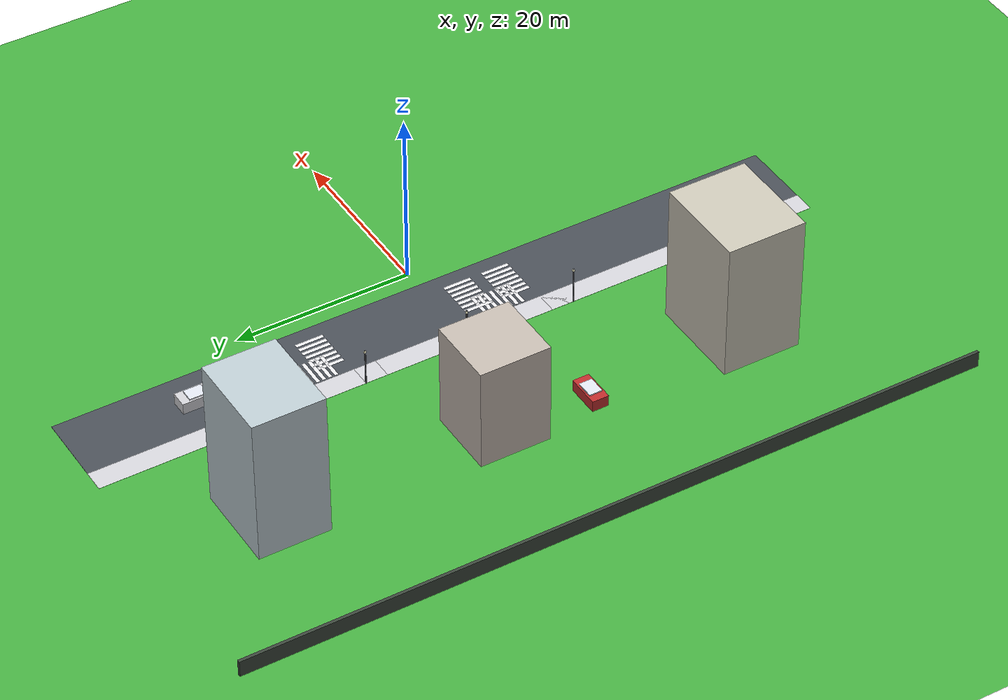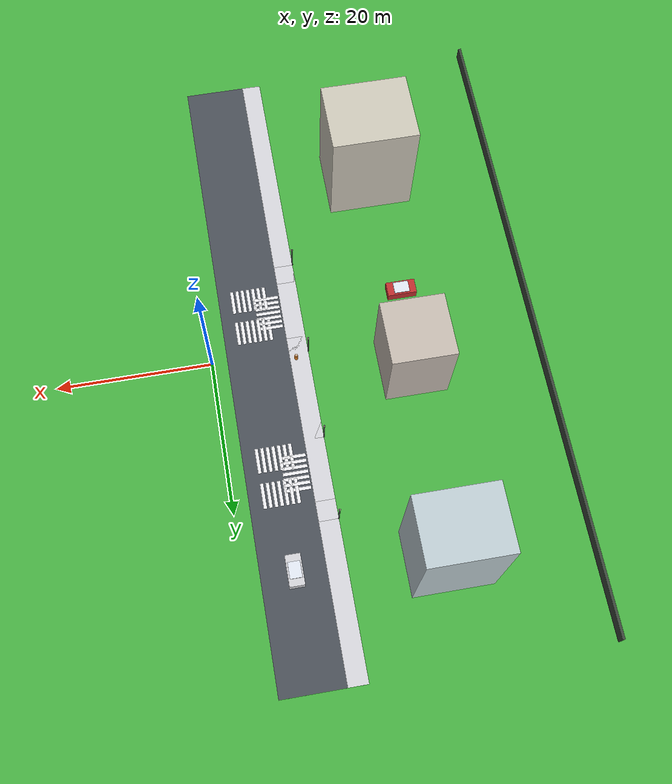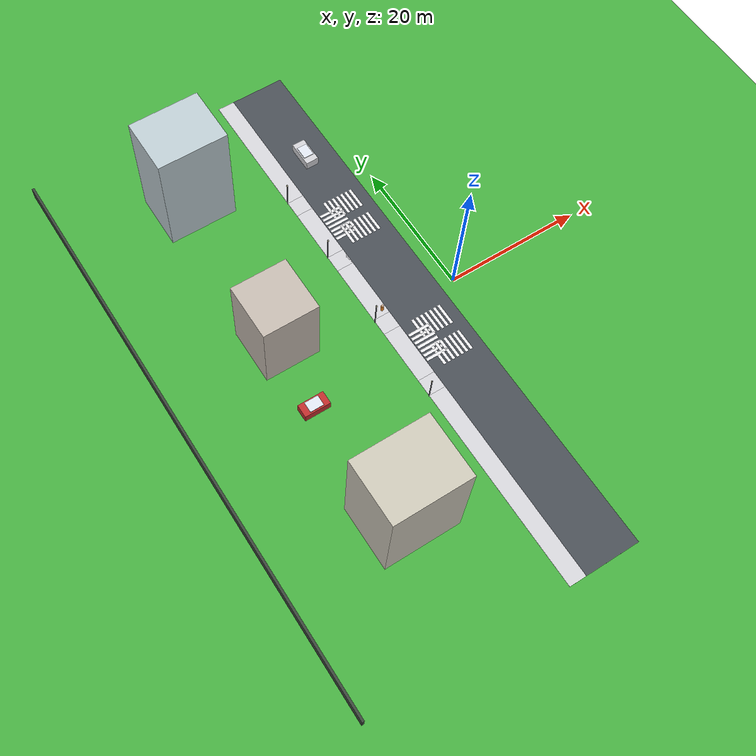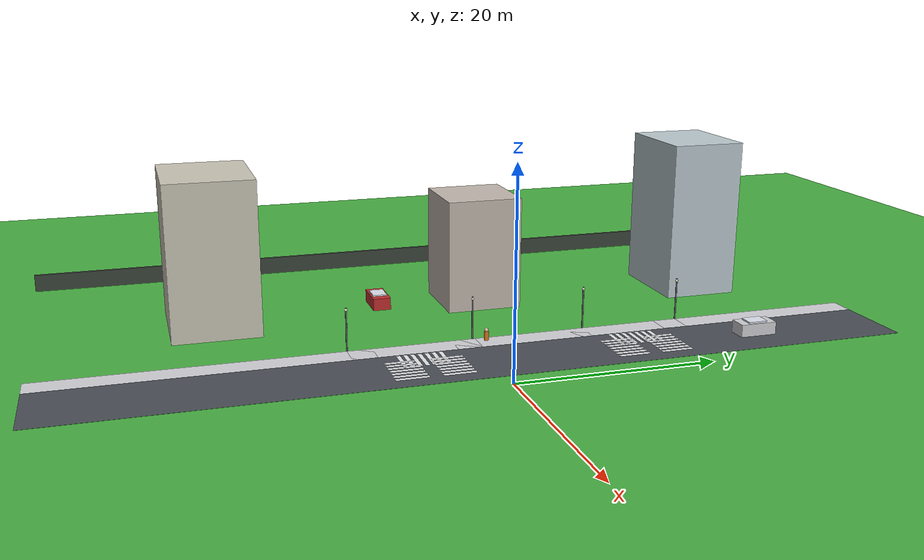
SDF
<sdf version="1.9">
 <world name="city_second">
  <model name="ground_plane">
   <static>true</static>
   <link name="link">
    <collision name="collision">
     <geometry><plane><normal>0 0 1</normal><size>300 300</size></plane></geometry>
    </collision>
    <visual name="visual">
     <geometry><plane><normal>0 0 1</normal><size>300 300</size></plane></geometry>
     <material>
      <ambient>0.28 0.69 0.26 1</ambient>
      <diffuse>0.28 0.69 0.26 1</diffuse>
      <specular>0.03 0.03 0.03 1</specular>
     </material>
    </visual>
   </link>
  </model>
  <model name="road_v_1">
   <static>true</static>
   <pose>-6.0 0 0.01 0 0 0.0</pose>
   <link name="link">
    <collision name="collision"><geometry><box><size>8.0 84 0.02</size></box></geometry></collision>
    <visual name="visual">
     <geometry><box><size>8.0 84 0.02</size></box></geometry>
     <material>
      <ambient>0.29 0.31 0.34 1</ambient>
      <diffuse>0.29 0.31 0.34 1</diffuse>
      <specular>0.03 0.03 0.03 1</specular>
     </material>
    </visual>
   </link>
  </model>
  <model name="sidewalk_v_1_west">
   <static>true</static>
   <pose>-11.25 0 0.015 0 0 0.0</pose>
   <link name="link">
    <collision name="collision"><geometry><box><size>2.5 84 0.02</size></box></geometry></collision>
    <visual name="visual">
     <geometry><box><size>2.5 84 0.02</size></box></geometry>
     <material>
      <ambient>0.83 0.83 0.85 1</ambient>
      <diffuse>0.83 0.83 0.85 1</diffuse>
      <specular>0.03 0.03 0.03 1</specular>
     </material>
    </visual>
   </link>
  </model>
  <model name="corner_sidewalk_1_1_1">
   <static>true</static>
   <pose>-11.25 -11.25 0.015 0 0 0.0</pose>
   <link name="link">
    <collision name="collision"><geometry><box><size>2.5 2.5 0.02</size></box></geometry></collision>
    <visual name="visual">
     <geometry><box><size>2.5 2.5 0.02</size></box></geometry>
     <material>
      <ambient>0.83 0.83 0.85 1</ambient>
      <diffuse>0.83 0.83 0.85 1</diffuse>
      <specular>0.03 0.03 0.03 1</specular>
     </material>
    </visual>
   </link>
  </model>
  <model name="corner_sidewalk_1_1_2">
   <static>true</static>
   <pose>-11.25 -0.75 0.015 0 0 0.0</pose>
   <link name="link">
    <collision name="collision"><geometry><box><size>2.5 2.5 0.02</size></box></geometry></collision>
    <visual name="visual">
     <geometry><box><size>2.5 2.5 0.02</size></box></geometry>
     <material>
      <ambient>0.83 0.83 0.85 1</ambient>
      <diffuse>0.83 0.83 0.85 1</diffuse>
      <specular>0.03 0.03 0.03 1</specular>
     </material>
    </visual>
   </link>
  </model>
  <model name="corner_sidewalk_1_2_1">
   <static>true</static>
   <pose>-11.25 10.75 0.015 0 0 0.0</pose>
   <link name="link">
    <collision name="collision"><geometry><box><size>2.5 2.5 0.02</size></box></geometry></collision>
    <visual name="visual">
     <geometry><box><size>2.5 2.5 0.02</size></box></geometry>
     <material>
      <ambient>0.83 0.83 0.85 1</ambient>
      <diffuse>0.83 0.83 0.85 1</diffuse>
      <specular>0.03 0.03 0.03 1</specular>
     </material>
    </visual>
   </link>
  </model>
  <model name="corner_sidewalk_1_2_2">
   <static>true</static>
   <pose>-11.25 21.25 0.015 0 0 0.0</pose>
   <link name="link">
    <collision name="collision"><geometry><box><size>2.5 2.5 0.02</size></box></geometry></collision>
    <visual name="visual">
     <geometry><box><size>2.5 2.5 0.02</size></box></geometry>
     <material>
      <ambient>0.83 0.83 0.85 1</ambient>
      <diffuse>0.83 0.83 0.85 1</diffuse>
      <specular>0.03 0.03 0.03 1</specular>
     </material>
    </visual>
   </link>
  </model>
  <model name="crosswalk_h_1_1_south_1">
   <static>true</static>
   <pose>-8.1 -8.25 0.017 0 0 0.0</pose>
   <link name="link">
    <collision name="collision"><geometry><box><size>0.42 3.2 0.01</size></box></geometry></collision>
    <visual name="visual">
     <geometry><box><size>0.42 3.2 0.01</size></box></geometry>
     <material>
      <ambient>0.92 0.92 0.93 1</ambient>
      <diffuse>0.92 0.92 0.93 1</diffuse>
      <specular>0.03 0.03 0.03 1</specular>
     </material>
    </visual>
   </link>
  </model>
  <model name="crosswalk_h_1_1_south_2">
   <static>true</static>
   <pose>-7.3999999999999995 -8.25 0.017 0 0 0.0</pose>
   <link name="link">
    <collision name="collision"><geometry><box><size>0.42 3.2 0.01</size></box></geometry></collision>
    <visual name="visual">
     <geometry><box><size>0.42 3.2 0.01</size></box></geometry>
     <material>
      <ambient>0.92 0.92 0.93 1</ambient>
      <diffuse>0.92 0.92 0.93 1</diffuse>
      <specular>0.03 0.03 0.03 1</specular>
     </material>
    </visual>
   </link>
  </model>
  <model name="crosswalk_h_1_1_south_3">
   <static>true</static>
   <pose>-6.699999999999999 -8.25 0.017 0 0 0.0</pose>
   <link name="link">
    <collision name="collision"><geometry><box><size>0.42 3.2 0.01</size></box></geometry></collision>
    <visual name="visual">
     <geometry><box><size>0.42 3.2 0.01</size></box></geometry>
     <material>
      <ambient>0.92 0.92 0.93 1</ambient>
      <diffuse>0.92 0.92 0.93 1</diffuse>
      <specular>0.03 0.03 0.03 1</specular>
     </material>
    </visual>
   </link>
  </model>
  <model name="crosswalk_h_1_1_south_4">
   <static>true</static>
   <pose>-6.0 -8.25 0.017 0 0 0.0</pose>
   <link name="link">
    <collision name="collision"><geometry><box><size>0.42 3.2 0.01</size></box></geometry></collision>
    <visual name="visual">
     <geometry><box><size>0.42 3.2 0.01</size></box></geometry>
     <material>
      <ambient>0.92 0.92 0.93 1</ambient>
      <diffuse>0.92 0.92 0.93 1</diffuse>
      <specular>0.03 0.03 0.03 1</specular>
     </material>
    </visual>
   </link>
  </model>
  <model name="crosswalk_h_1_1_south_5">
   <static>true</static>
   <pose>-5.3 -8.25 0.017 0 0 0.0</pose>
   <link name="link">
    <collision name="collision"><geometry><box><size>0.42 3.2 0.01</size></box></geometry></collision>
    <visual name="visual">
     <geometry><box><size>0.42 3.2 0.01</size></box></geometry>
     <material>
      <ambient>0.92 0.92 0.93 1</ambient>
      <diffuse>0.92 0.92 0.93 1</diffuse>
      <specular>0.03 0.03 0.03 1</specular>
     </material>
    </visual>
   </link>
  </model>
  <model name="crosswalk_h_1_1_south_6">
   <static>true</static>
   <pose>-4.6 -8.25 0.017 0 0 0.0</pose>
   <link name="link">
    <collision name="collision"><geometry><box><size>0.42 3.2 0.01</size></box></geometry></collision>
    <visual name="visual">
     <geometry><box><size>0.42 3.2 0.01</size></box></geometry>
     <material>
      <ambient>0.92 0.92 0.93 1</ambient>
      <diffuse>0.92 0.92 0.93 1</diffuse>
      <specular>0.03 0.03 0.03 1</specular>
     </material>
    </visual>
   </link>
  </model>
  <model name="crosswalk_h_1_1_south_7">
   <static>true</static>
   <pose>-3.9000000000000004 -8.25 0.017 0 0 0.0</pose>
   <link name="link">
    <collision name="collision"><geometry><box><size>0.42 3.2 0.01</size></box></geometry></collision>
    <visual name="visual">
     <geometry><box><size>0.42 3.2 0.01</size></box></geometry>
     <material>
      <ambient>0.92 0.92 0.93 1</ambient>
      <diffuse>0.92 0.92 0.93 1</diffuse>
      <specular>0.03 0.03 0.03 1</specular>
     </material>
    </visual>
   </link>
  </model>
  <model name="crosswalk_h_1_1_north_1">
   <static>true</static>
   <pose>-8.1 -3.75 0.017 0 0 0.0</pose>
   <link name="link">
    <collision name="collision"><geometry><box><size>0.42 3.2 0.01</size></box></geometry></collision>
    <visual name="visual">
     <geometry><box><size>0.42 3.2 0.01</size></box></geometry>
     <material>
      <ambient>0.92 0.92 0.93 1</ambient>
      <diffuse>0.92 0.92 0.93 1</diffuse>
      <specular>0.03 0.03 0.03 1</specular>
     </material>
    </visual>
   </link>
  </model>
  <model name="crosswalk_h_1_1_north_2">
   <static>true</static>
   <pose>-7.3999999999999995 -3.75 0.017 0 0 0.0</pose>
   <link name="link">
    <collision name="collision"><geometry><box><size>0.42 3.2 0.01</size></box></geometry></collision>
    <visual name="visual">
     <geometry><box><size>0.42 3.2 0.01</size></box></geometry>
     <material>
      <ambient>0.92 0.92 0.93 1</ambient>
      <diffuse>0.92 0.92 0.93 1</diffuse>
      <specular>0.03 0.03 0.03 1</specular>
     </material>
    </visual>
   </link>
  </model>
  <model name="crosswalk_h_1_1_north_3">
   <static>true</static>
   <pose>-6.699999999999999 -3.75 0.017 0 0 0.0</pose>
   <link name="link">
    <collision name="collision"><geometry><box><size>0.42 3.2 0.01</size></box></geometry></collision>
    <visual name="visual">
     <geometry><box><size>0.42 3.2 0.01</size></box></geometry>
     <material>
      <ambient>0.92 0.92 0.93 1</ambient>
      <diffuse>0.92 0.92 0.93 1</diffuse>
      <specular>0.03 0.03 0.03 1</specular>
     </material>
    </visual>
   </link>
  </model>
  <model name="crosswalk_h_1_1_north_4">
   <static>true</static>
   <pose>-6.0 -3.75 0.017 0 0 0.0</pose>
   <link name="link">
    <collision name="collision"><geometry><box><size>0.42 3.2 0.01</size></box></geometry></collision>
    <visual name="visual">
     <geometry><box><size>0.42 3.2 0.01</size></box></geometry>
     <material>
      <ambient>0.92 0.92 0.93 1</ambient>
      <diffuse>0.92 0.92 0.93 1</diffuse>
      <specular>0.03 0.03 0.03 1</specular>
     </material>
    </visual>
   </link>
  </model>
  <model name="crosswalk_h_1_1_north_5">
   <static>true</static>
   <pose>-5.3 -3.75 0.017 0 0 0.0</pose>
   <link name="link">
    <collision name="collision"><geometry><box><size>0.42 3.2 0.01</size></box></geometry></collision>
    <visual name="visual">
     <geometry><box><size>0.42 3.2 0.01</size></box></geometry>
     <material>
      <ambient>0.92 0.92 0.93 1</ambient>
      <diffuse>0.92 0.92 0.93 1</diffuse>
      <specular>0.03 0.03 0.03 1</specular>
     </material>
    </visual>
   </link>
  </model>
  <model name="crosswalk_h_1_1_north_6">
   <static>true</static>
   <pose>-4.6 -3.75 0.017 0 0 0.0</pose>
   <link name="link">
    <collision name="collision"><geometry><box><size>0.42 3.2 0.01</size></box></geometry></collision>
    <visual name="visual">
     <geometry><box><size>0.42 3.2 0.01</size></box></geometry>
     <material>
      <ambient>0.92 0.92 0.93 1</ambient>
      <diffuse>0.92 0.92 0.93 1</diffuse>
      <specular>0.03 0.03 0.03 1</specular>
     </material>
    </visual>
   </link>
  </model>
  <model name="crosswalk_h_1_1_north_7">
   <static>true</static>
   <pose>-3.9000000000000004 -3.75 0.017 0 0 0.0</pose>
   <link name="link">
    <collision name="collision"><geometry><box><size>0.42 3.2 0.01</size></box></geometry></collision>
    <visual name="visual">
     <geometry><box><size>0.42 3.2 0.01</size></box></geometry>
     <material>
      <ambient>0.92 0.92 0.93 1</ambient>
      <diffuse>0.92 0.92 0.93 1</diffuse>
      <specular>0.03 0.03 0.03 1</specular>
     </material>
    </visual>
   </link>
  </model>
  <model name="crosswalk_v_1_1_west_1">
   <static>true</static>
   <pose>-8.25 -8.1 0.017 0 0 0.0</pose>
   <link name="link">
    <collision name="collision"><geometry><box><size>3.2 0.42 0.01</size></box></geometry></collision>
    <visual name="visual">
     <geometry><box><size>3.2 0.42 0.01</size></box></geometry>
     <material>
      <ambient>0.92 0.92 0.93 1</ambient>
      <diffuse>0.92 0.92 0.93 1</diffuse>
      <specular>0.03 0.03 0.03 1</specular>
     </material>
    </visual>
   </link>
  </model>
  <model name="crosswalk_v_1_1_west_2">
   <static>true</static>
   <pose>-8.25 -7.3999999999999995 0.017 0 0 0.0</pose>
   <link name="link">
    <collision name="collision"><geometry><box><size>3.2 0.42 0.01</size></box></geometry></collision>
    <visual name="visual">
     <geometry><box><size>3.2 0.42 0.01</size></box></geometry>
     <material>
      <ambient>0.92 0.92 0.93 1</ambient>
      <diffuse>0.92 0.92 0.93 1</diffuse>
      <specular>0.03 0.03 0.03 1</specular>
     </material>
    </visual>
   </link>
  </model>
  <model name="crosswalk_v_1_1_west_3">
   <static>true</static>
   <pose>-8.25 -6.699999999999999 0.017 0 0 0.0</pose>
   <link name="link">
    <collision name="collision"><geometry><box><size>3.2 0.42 0.01</size></box></geometry></collision>
    <visual name="visual">
     <geometry><box><size>3.2 0.42 0.01</size></box></geometry>
     <material>
      <ambient>0.92 0.92 0.93 1</ambient>
      <diffuse>0.92 0.92 0.93 1</diffuse>
      <specular>0.03 0.03 0.03 1</specular>
     </material>
    </visual>
   </link>
  </model>
  <model name="crosswalk_v_1_1_west_4">
   <static>true</static>
   <pose>-8.25 -6.0 0.017 0 0 0.0</pose>
   <link name="link">
    <collision name="collision"><geometry><box><size>3.2 0.42 0.01</size></box></geometry></collision>
    <visual name="visual">
     <geometry><box><size>3.2 0.42 0.01</size></box></geometry>
     <material>
      <ambient>0.92 0.92 0.93 1</ambient>
      <diffuse>0.92 0.92 0.93 1</diffuse>
      <specular>0.03 0.03 0.03 1</specular>
     </material>
    </visual>
   </link>
  </model>
  <model name="crosswalk_v_1_1_west_5">
   <static>true</static>
   <pose>-8.25 -5.3 0.017 0 0 0.0</pose>
   <link name="link">
    <collision name="collision"><geometry><box><size>3.2 0.42 0.01</size></box></geometry></collision>
    <visual name="visual">
     <geometry><box><size>3.2 0.42 0.01</size></box></geometry>
     <material>
      <ambient>0.92 0.92 0.93 1</ambient>
      <diffuse>0.92 0.92 0.93 1</diffuse>
      <specular>0.03 0.03 0.03 1</specular>
     </material>
    </visual>
   </link>
  </model>
  <model name="crosswalk_v_1_1_west_6">
   <static>true</static>
   <pose>-8.25 -4.6 0.017 0 0 0.0</pose>
   <link name="link">
    <collision name="collision"><geometry><box><size>3.2 0.42 0.01</size></box></geometry></collision>
    <visual name="visual">
     <geometry><box><size>3.2 0.42 0.01</size></box></geometry>
     <material>
      <ambient>0.92 0.92 0.93 1</ambient>
      <diffuse>0.92 0.92 0.93 1</diffuse>
      <specular>0.03 0.03 0.03 1</specular>
     </material>
    </visual>
   </link>
  </model>
  <model name="crosswalk_v_1_1_west_7">
   <static>true</static>
   <pose>-8.25 -3.9000000000000004 0.017 0 0 0.0</pose>
   <link name="link">
    <collision name="collision"><geometry><box><size>3.2 0.42 0.01</size></box></geometry></collision>
    <visual name="visual">
     <geometry><box><size>3.2 0.42 0.01</size></box></geometry>
     <material>
      <ambient>0.92 0.92 0.93 1</ambient>
      <diffuse>0.92 0.92 0.93 1</diffuse>
      <specular>0.03 0.03 0.03 1</specular>
     </material>
    </visual>
   </link>
  </model>
  <model name="crosswalk_h_1_2_south_1">
   <static>true</static>
   <pose>-8.1 13.75 0.017 0 0 0.0</pose>
   <link name="link">
    <collision name="collision"><geometry><box><size>0.42 3.2 0.01</size></box></geometry></collision>
    <visual name="visual">
     <geometry><box><size>0.42 3.2 0.01</size></box></geometry>
     <material>
      <ambient>0.92 0.92 0.93 1</ambient>
      <diffuse>0.92 0.92 0.93 1</diffuse>
      <specular>0.03 0.03 0.03 1</specular>
     </material>
    </visual>
   </link>
  </model>
  <model name="crosswalk_h_1_2_south_2">
   <static>true</static>
   <pose>-7.3999999999999995 13.75 0.017 0 0 0.0</pose>
   <link name="link">
    <collision name="collision"><geometry><box><size>0.42 3.2 0.01</size></box></geometry></collision>
    <visual name="visual">
     <geometry><box><size>0.42 3.2 0.01</size></box></geometry>
     <material>
      <ambient>0.92 0.92 0.93 1</ambient>
      <diffuse>0.92 0.92 0.93 1</diffuse>
      <specular>0.03 0.03 0.03 1</specular>
     </material>
    </visual>
   </link>
  </model>
  <model name="crosswalk_h_1_2_south_3">
   <static>true</static>
   <pose>-6.699999999999999 13.75 0.017 0 0 0.0</pose>
   <link name="link">
    <collision name="collision"><geometry><box><size>0.42 3.2 0.01</size></box></geometry></collision>
    <visual name="visual">
     <geometry><box><size>0.42 3.2 0.01</size></box></geometry>
     <material>
      <ambient>0.92 0.92 0.93 1</ambient>
      <diffuse>0.92 0.92 0.93 1</diffuse>
      <specular>0.03 0.03 0.03 1</specular>
     </material>
    </visual>
   </link>
  </model>
  <model name="crosswalk_h_1_2_south_4">
   <static>true</static>
   <pose>-6.0 13.75 0.017 0 0 0.0</pose>
   <link name="link">
    <collision name="collision"><geometry><box><size>0.42 3.2 0.01</size></box></geometry></collision>
    <visual name="visual">
     <geometry><box><size>0.42 3.2 0.01</size></box></geometry>
     <material>
      <ambient>0.92 0.92 0.93 1</ambient>
      <diffuse>0.92 0.92 0.93 1</diffuse>
      <specular>0.03 0.03 0.03 1</specular>
     </material>
    </visual>
   </link>
  </model>
  <model name="crosswalk_h_1_2_south_5">
   <static>true</static>
   <pose>-5.3 13.75 0.017 0 0 0.0</pose>
   <link name="link">
    <collision name="collision"><geometry><box><size>0.42 3.2 0.01</size></box></geometry></collision>
    <visual name="visual">
     <geometry><box><size>0.42 3.2 0.01</size></box></geometry>
     <material>
      <ambient>0.92 0.92 0.93 1</ambient>
      <diffuse>0.92 0.92 0.93 1</diffuse>
      <specular>0.03 0.03 0.03 1</specular>
     </material>
    </visual>
   </link>
  </model>
  <model name="crosswalk_h_1_2_south_6">
   <static>true</static>
   <pose>-4.6 13.75 0.017 0 0 0.0</pose>
   <link name="link">
    <collision name="collision"><geometry><box><size>0.42 3.2 0.01</size></box></geometry></collision>
    <visual name="visual">
     <geometry><box><size>0.42 3.2 0.01</size></box></geometry>
     <material>
      <ambient>0.92 0.92 0.93 1</ambient>
      <diffuse>0.92 0.92 0.93 1</diffuse>
      <specular>0.03 0.03 0.03 1</specular>
     </material>
    </visual>
   </link>
  </model>
  <model name="crosswalk_h_1_2_south_7">
   <static>true</static>
   <pose>-3.9000000000000004 13.75 0.017 0 0 0.0</pose>
   <link name="link">
    <collision name="collision"><geometry><box><size>0.42 3.2 0.01</size></box></geometry></collision>
    <visual name="visual">
     <geometry><box><size>0.42 3.2 0.01</size></box></geometry>
     <material>
      <ambient>0.92 0.92 0.93 1</ambient>
      <diffuse>0.92 0.92 0.93 1</diffuse>
      <specular>0.03 0.03 0.03 1</specular>
     </material>
    </visual>
   </link>
  </model>
  <model name="crosswalk_h_1_2_north_1">
   <static>true</static>
   <pose>-8.1 18.25 0.017 0 0 0.0</pose>
   <link name="link">
    <collision name="collision"><geometry><box><size>0.42 3.2 0.01</size></box></geometry></collision>
    <visual name="visual">
     <geometry><box><size>0.42 3.2 0.01</size></box></geometry>
     <material>
      <ambient>0.92 0.92 0.93 1</ambient>
      <diffuse>0.92 0.92 0.93 1</diffuse>
      <specular>0.03 0.03 0.03 1</specular>
     </material>
    </visual>
   </link>
  </model>
  <model name="crosswalk_h_1_2_north_2">
   <static>true</static>
   <pose>-7.3999999999999995 18.25 0.017 0 0 0.0</pose>
   <link name="link">
    <collision name="collision"><geometry><box><size>0.42 3.2 0.01</size></box></geometry></collision>
    <visual name="visual">
     <geometry><box><size>0.42 3.2 0.01</size></box></geometry>
     <material>
      <ambient>0.92 0.92 0.93 1</ambient>
      <diffuse>0.92 0.92 0.93 1</diffuse>
      <specular>0.03 0.03 0.03 1</specular>
     </material>
    </visual>
   </link>
  </model>
  <model name="crosswalk_h_1_2_north_3">
   <static>true</static>
   <pose>-6.699999999999999 18.25 0.017 0 0 0.0</pose>
   <link name="link">
    <collision name="collision"><geometry><box><size>0.42 3.2 0.01</size></box></geometry></collision>
    <visual name="visual">
     <geometry><box><size>0.42 3.2 0.01</size></box></geometry>
     <material>
      <ambient>0.92 0.92 0.93 1</ambient>
      <diffuse>0.92 0.92 0.93 1</diffuse>
      <specular>0.03 0.03 0.03 1</specular>
     </material>
    </visual>
   </link>
  </model>
  <model name="crosswalk_h_1_2_north_4">
   <static>true</static>
   <pose>-6.0 18.25 0.017 0 0 0.0</pose>
   <link name="link">
    <collision name="collision"><geometry><box><size>0.42 3.2 0.01</size></box></geometry></collision>
    <visual name="visual">
     <geometry><box><size>0.42 3.2 0.01</size></box></geometry>
     <material>
      <ambient>0.92 0.92 0.93 1</ambient>
      <diffuse>0.92 0.92 0.93 1</diffuse>
      <specular>0.03 0.03 0.03 1</specular>
     </material>
    </visual>
   </link>
  </model>
  <model name="crosswalk_h_1_2_north_5">
   <static>true</static>
   <pose>-5.3 18.25 0.017 0 0 0.0</pose>
   <link name="link">
    <collision name="collision"><geometry><box><size>0.42 3.2 0.01</size></box></geometry></collision>
    <visual name="visual">
     <geometry><box><size>0.42 3.2 0.01</size></box></geometry>
     <material>
      <ambient>0.92 0.92 0.93 1</ambient>
      <diffuse>0.92 0.92 0.93 1</diffuse>
      <specular>0.03 0.03 0.03 1</specular>
     </material>
    </visual>
   </link>
  </model>
  <model name="crosswalk_h_1_2_north_6">
   <static>true</static>
   <pose>-4.6 18.25 0.017 0 0 0.0</pose>
   <link name="link">
    <collision name="collision"><geometry><box><size>0.42 3.2 0.01</size></box></geometry></collision>
    <visual name="visual">
     <geometry><box><size>0.42 3.2 0.01</size></box></geometry>
     <material>
      <ambient>0.92 0.92 0.93 1</ambient>
      <diffuse>0.92 0.92 0.93 1</diffuse>
      <specular>0.03 0.03 0.03 1</specular>
     </material>
    </visual>
   </link>
  </model>
  <model name="crosswalk_h_1_2_north_7">
   <static>true</static>
   <pose>-3.9000000000000004 18.25 0.017 0 0 0.0</pose>
   <link name="link">
    <collision name="collision"><geometry><box><size>0.42 3.2 0.01</size></box></geometry></collision>
    <visual name="visual">
     <geometry><box><size>0.42 3.2 0.01</size></box></geometry>
     <material>
      <ambient>0.92 0.92 0.93 1</ambient>
      <diffuse>0.92 0.92 0.93 1</diffuse>
      <specular>0.03 0.03 0.03 1</specular>
     </material>
    </visual>
   </link>
  </model>
  <model name="crosswalk_v_1_2_west_1">
   <static>true</static>
   <pose>-8.25 13.9 0.017 0 0 0.0</pose>
   <link name="link">
    <collision name="collision"><geometry><box><size>3.2 0.42 0.01</size></box></geometry></collision>
    <visual name="visual">
     <geometry><box><size>3.2 0.42 0.01</size></box></geometry>
     <material>
      <ambient>0.92 0.92 0.93 1</ambient>
      <diffuse>0.92 0.92 0.93 1</diffuse>
      <specular>0.03 0.03 0.03 1</specular>
     </material>
    </visual>
   </link>
  </model>
  <model name="crosswalk_v_1_2_west_2">
   <static>true</static>
   <pose>-8.25 14.6 0.017 0 0 0.0</pose>
   <link name="link">
    <collision name="collision"><geometry><box><size>3.2 0.42 0.01</size></box></geometry></collision>
    <visual name="visual">
     <geometry><box><size>3.2 0.42 0.01</size></box></geometry>
     <material>
      <ambient>0.92 0.92 0.93 1</ambient>
      <diffuse>0.92 0.92 0.93 1</diffuse>
      <specular>0.03 0.03 0.03 1</specular>
     </material>
    </visual>
   </link>
  </model>
  <model name="crosswalk_v_1_2_west_3">
   <static>true</static>
   <pose>-8.25 15.3 0.017 0 0 0.0</pose>
   <link name="link">
    <collision name="collision"><geometry><box><size>3.2 0.42 0.01</size></box></geometry></collision>
    <visual name="visual">
     <geometry><box><size>3.2 0.42 0.01</size></box></geometry>
     <material>
      <ambient>0.92 0.92 0.93 1</ambient>
      <diffuse>0.92 0.92 0.93 1</diffuse>
      <specular>0.03 0.03 0.03 1</specular>
     </material>
    </visual>
   </link>
  </model>
  <model name="crosswalk_v_1_2_west_4">
   <static>true</static>
   <pose>-8.25 16.0 0.017 0 0 0.0</pose>
   <link name="link">
    <collision name="collision"><geometry><box><size>3.2 0.42 0.01</size></box></geometry></collision>
    <visual name="visual">
     <geometry><box><size>3.2 0.42 0.01</size></box></geometry>
     <material>
      <ambient>0.92 0.92 0.93 1</ambient>
      <diffuse>0.92 0.92 0.93 1</diffuse>
      <specular>0.03 0.03 0.03 1</specular>
     </material>
    </visual>
   </link>
  </model>
  <model name="crosswalk_v_1_2_west_5">
   <static>true</static>
   <pose>-8.25 16.7 0.017 0 0 0.0</pose>
   <link name="link">
    <collision name="collision"><geometry><box><size>3.2 0.42 0.01</size></box></geometry></collision>
    <visual name="visual">
     <geometry><box><size>3.2 0.42 0.01</size></box></geometry>
     <material>
      <ambient>0.92 0.92 0.93 1</ambient>
      <diffuse>0.92 0.92 0.93 1</diffuse>
      <specular>0.03 0.03 0.03 1</specular>
     </material>
    </visual>
   </link>
  </model>
  <model name="crosswalk_v_1_2_west_6">
   <static>true</static>
   <pose>-8.25 17.4 0.017 0 0 0.0</pose>
   <link name="link">
    <collision name="collision"><geometry><box><size>3.2 0.42 0.01</size></box></geometry></collision>
    <visual name="visual">
     <geometry><box><size>3.2 0.42 0.01</size></box></geometry>
     <material>
      <ambient>0.92 0.92 0.93 1</ambient>
      <diffuse>0.92 0.92 0.93 1</diffuse>
      <specular>0.03 0.03 0.03 1</specular>
     </material>
    </visual>
   </link>
  </model>
  <model name="crosswalk_v_1_2_west_7">
   <static>true</static>
   <pose>-8.25 18.1 0.017 0 0 0.0</pose>
   <link name="link">
    <collision name="collision"><geometry><box><size>3.2 0.42 0.01</size></box></geometry></collision>
    <visual name="visual">
     <geometry><box><size>3.2 0.42 0.01</size></box></geometry>
     <material>
      <ambient>0.92 0.92 0.93 1</ambient>
      <diffuse>0.92 0.92 0.93 1</diffuse>
      <specular>0.03 0.03 0.03 1</specular>
     </material>
    </visual>
   </link>
  </model>
  <model name="house_1_1">
   <static>true</static>
   <pose>-24.5 -24.1 8.0 0 0 0.0</pose>
   <link name="link">
    <collision name="collision"><geometry><box><size>11 9 16</size></box></geometry></collision>
    <visual name="visual">
     <geometry><box><size>11 9 16</size></box></geometry>
     <material>
      <ambient>0.8 0.78 0.72 1</ambient>
      <diffuse>0.8 0.78 0.72 1</diffuse>
      <specular>0.03 0.03 0.03 1</specular>
     </material>
    </visual>
   </link>
  </model>
  <model name="house_2_1">
   <static>true</static>
   <pose>-25.1 4.3999999999999995 6.0 0 0 0.0</pose>
   <link name="link">
    <collision name="collision"><geometry><box><size>8 8 12</size></box></geometry></collision>
    <visual name="visual">
     <geometry><box><size>8 8 12</size></box></geometry>
     <material>
      <ambient>0.77 0.73 0.69 1</ambient>
      <diffuse>0.77 0.73 0.69 1</diffuse>
      <specular>0.03 0.03 0.03 1</specular>
     </material>
    </visual>
   </link>
  </model>
  <model name="house_3_1">
   <static>true</static>
   <pose>-24.3 29.3 8.5 0 0 0.0</pose>
   <link name="link">
    <collision name="collision"><geometry><box><size>10 8 17</size></box></geometry></collision>
    <visual name="visual">
     <geometry><box><size>10 8 17</size></box></geometry>
     <material>
      <ambient>0.74 0.8 0.82 1</ambient>
      <diffuse>0.74 0.8 0.82 1</diffuse>
      <specular>0.03 0.03 0.03 1</specular>
     </material>
    </visual>
   </link>
  </model>
  <model name="car_1">
   <static>true</static>
   <pose>-26.0 -6.2 0.65 0 0 0.0</pose>
   <link name="link">
    <collision name="collision"><geometry><box><size>3.8 1.9 1.3</size></box></geometry></collision>
    <visual name="body">
     <geometry><box><size>3.8 1.9 1.3</size></box></geometry>
     <material>
      <ambient>0.75 0.18 0.18 1</ambient>
      <diffuse>0.75 0.18 0.18 1</diffuse>
      <specular>0.03 0.03 0.03 1</specular>
     </material>
    </visual>
    <visual name="roof">
     <pose>0 0 0.55 0 0 0</pose>
     <geometry><box><size>2.0 1.5 0.5</size></box></geometry>
     <material>
      <ambient>0.88 0.9 0.94 1</ambient>
      <diffuse>0.88 0.9 0.94 1</diffuse>
      <specular>0.03 0.03 0.03 1</specular>
     </material>
    </visual>
   </link>
  </model>
  <model name="car_4">
   <static>true</static>
   <pose>-6.2 28.0 0.65 0 0 1.5707963267948966</pose>
   <link name="link">
    <collision name="collision"><geometry><box><size>3.8 1.9 1.3</size></box></geometry></collision>
    <visual name="body">
     <geometry><box><size>3.8 1.9 1.3</size></box></geometry>
     <material>
      <ambient>0.82 0.82 0.84 1</ambient>
      <diffuse>0.82 0.82 0.84 1</diffuse>
      <specular>0.03 0.03 0.03 1</specular>
     </material>
    </visual>
    <visual name="roof">
     <pose>0 0 0.55 0 0 0</pose>
     <geometry><box><size>2.0 1.5 0.5</size></box></geometry>
     <material>
      <ambient>0.88 0.9 0.94 1</ambient>
      <diffuse>0.88 0.9 0.94 1</diffuse>
      <specular>0.03 0.03 0.03 1</specular>
     </material>
    </visual>
   </link>
  </model>
  <model name="person_5">
   <static>true</static>
   <pose>-10.8 1.1 0 0 0 1.466</pose>
   <link name="link">
    <collision name="legs">
     <pose>0 0 0.45 0 0 0</pose>
     <geometry><cylinder><radius>0.18</radius><length>0.9</length></cylinder></geometry>
    </collision>
    <visual name="torso">
     <pose>0 0 0.85 0 0 0</pose>
     <geometry><cylinder><radius>0.22</radius><length>0.9</length></cylinder></geometry>
     <material>
      <ambient>0.85 0.48 0.12 1</ambient>
      <diffuse>0.85 0.48 0.12 1</diffuse>
      <specular>0.03 0.03 0.03 1</specular>
     </material>
    </visual>
    <visual name="head">
     <pose>0 0 1.45 0 0 0</pose>
     <geometry><sphere><radius>0.18</radius></sphere></geometry>
     <material>
      <ambient>0.92 0.78 0.66 1</ambient>
      <diffuse>0.92 0.78 0.66 1</diffuse>
      <specular>0.03 0.03 0.03 1</specular>
     </material>
    </visual>
   </link>
  </model>
  <model name="lamp_1">
   <static>true</static>
   <pose>-12.5 -12.5 2.2 0 0 0</pose>
   <link name="link">
    <collision name="collision">
     <geometry><cylinder><radius>0.08</radius><length>4.4</length></cylinder></geometry>
    </collision>
    <visual name="pole">
     <geometry><cylinder><radius>0.08</radius><length>4.4</length></cylinder></geometry>
     <material>
      <ambient>0.35 0.36 0.38 1</ambient>
      <diffuse>0.35 0.36 0.38 1</diffuse>
      <specular>0.03 0.03 0.03 1</specular>
     </material>
    </visual>
    <visual name="lamp_head">
     <pose>0 0 2.0 0 0 0</pose>
     <geometry><sphere><radius>0.14</radius></sphere></geometry>
     <material>
      <ambient>0.96 0.94 0.78 1</ambient>
      <diffuse>0.96 0.94 0.78 1</diffuse>
      <specular>0.03 0.03 0.03 1</specular>
     </material>
    </visual>
   </link>
  </model>
  <model name="lamp_2">
   <static>true</static>
   <pose>-12.5 0.2 2.2 0 0 0</pose>
   <link name="link">
    <collision name="collision">
     <geometry><cylinder><radius>0.08</radius><length>4.4</length></cylinder></geometry>
    </collision>
    <visual name="pole">
     <geometry><cylinder><radius>0.08</radius><length>4.4</length></cylinder></geometry>
     <material>
      <ambient>0.35 0.36 0.38 1</ambient>
      <diffuse>0.35 0.36 0.38 1</diffuse>
      <specular>0.03 0.03 0.03 1</specular>
     </material>
    </visual>
    <visual name="lamp_head">
     <pose>0 0 2.0 0 0 0</pose>
     <geometry><sphere><radius>0.14</radius></sphere></geometry>
     <material>
      <ambient>0.96 0.94 0.78 1</ambient>
      <diffuse>0.96 0.94 0.78 1</diffuse>
      <specular>0.03 0.03 0.03 1</specular>
     </material>
    </visual>
   </link>
  </model>
  <model name="lamp_3">
   <static>true</static>
   <pose>-12.5 12.0 2.2 0 0 0</pose>
   <link name="link">
    <collision name="collision">
     <geometry><cylinder><radius>0.08</radius><length>4.4</length></cylinder></geometry>
    </collision>
    <visual name="pole">
     <geometry><cylinder><radius>0.08</radius><length>4.4</length></cylinder></geometry>
     <material>
      <ambient>0.35 0.36 0.38 1</ambient>
      <diffuse>0.35 0.36 0.38 1</diffuse>
      <specular>0.03 0.03 0.03 1</specular>
     </material>
    </visual>
    <visual name="lamp_head">
     <pose>0 0 2.0 0 0 0</pose>
     <geometry><sphere><radius>0.14</radius></sphere></geometry>
     <material>
      <ambient>0.96 0.94 0.78 1</ambient>
      <diffuse>0.96 0.94 0.78 1</diffuse>
      <specular>0.03 0.03 0.03 1</specular>
     </material>
    </visual>
   </link>
  </model>
  <model name="lamp_4">
   <static>true</static>
   <pose>-12.5 22.5 2.2 0 0 0</pose>
   <link name="link">
    <collision name="collision">
     <geometry><cylinder><radius>0.08</radius><length>4.4</length></cylinder></geometry>
    </collision>
    <visual name="pole">
     <geometry><cylinder><radius>0.08</radius><length>4.4</length></cylinder></geometry>
     <material>
      <ambient>0.35 0.36 0.38 1</ambient>
      <diffuse>0.35 0.36 0.38 1</diffuse>
      <specular>0.03 0.03 0.03 1</specular>
     </material>
    </visual>
    <visual name="lamp_head">
     <pose>0 0 2.0 0 0 0</pose>
     <geometry><sphere><radius>0.14</radius></sphere></geometry>
     <material>
      <ambient>0.96 0.94 0.78 1</ambient>
      <diffuse>0.96 0.94 0.78 1</diffuse>
      <specular>0.03 0.03 0.03 1</specular>
     </material>
    </visual>
   </link>
  </model>
  <model name="fence_west">
   <static>true</static>
   <pose>-42.0 0 0.95 0 0 0.0</pose>
   <link name="link">
    <collision name="collision"><geometry><box><size>0.35 84.5 1.9</size></box></geometry></collision>
    <visual name="visual">
     <geometry><box><size>0.35 84.5 1.9</size></box></geometry>
     <material>
      <ambient>0.23 0.27 0.23 1</ambient>
      <diffuse>0.23 0.27 0.23 1</diffuse>
      <specular>0.03 0.03 0.03 1</specular>
     </material>
    </visual>
   </link>
  </model>
 </world>
</sdf>
